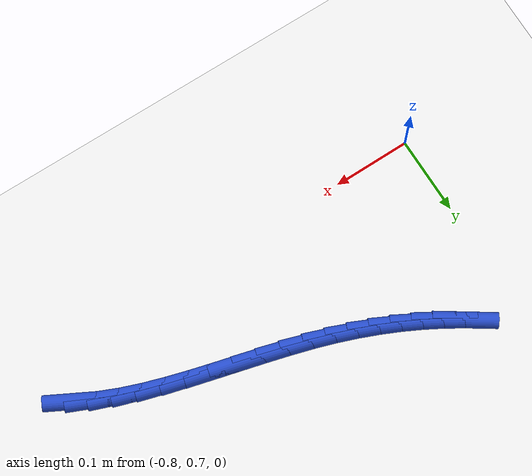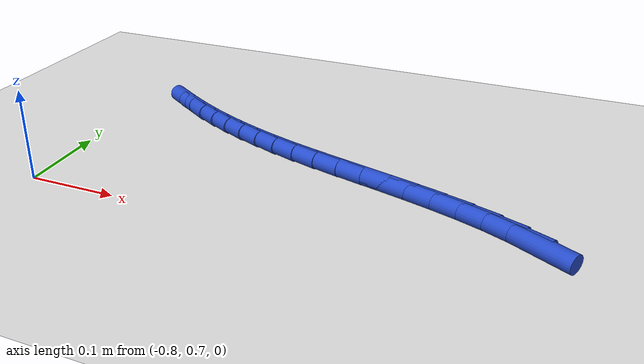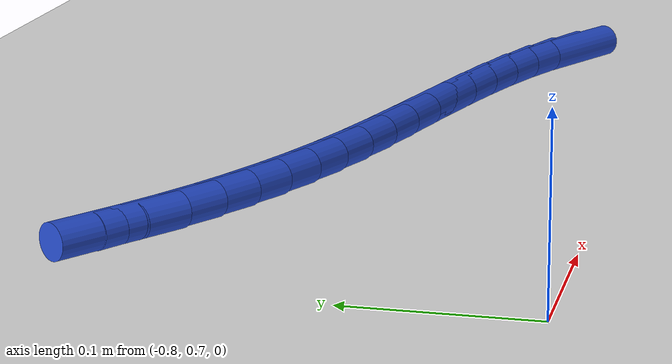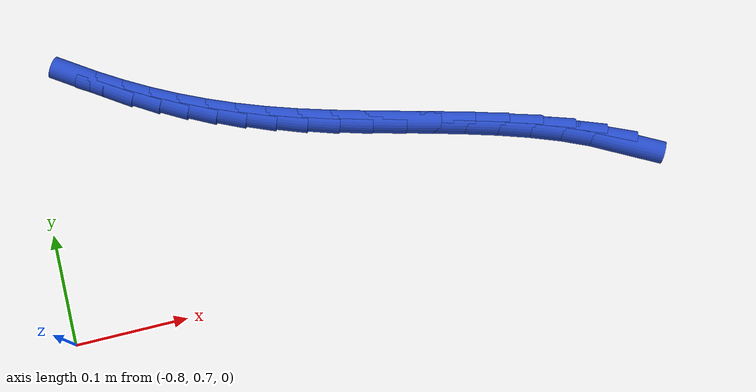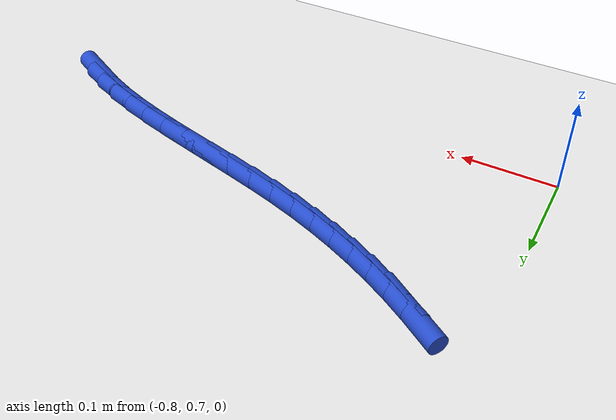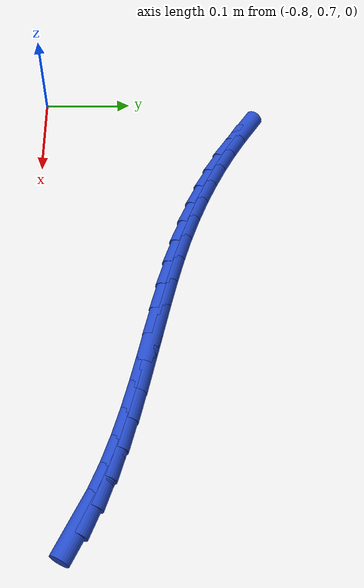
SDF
<sdf version="1.6">
 <world name="default">
  <model name="ground_plane">
   <static>1</static>
   <link name="link">
    <collision name="collision">
     <geometry><plane><normal>0 0 1</normal><size>100 100</size></plane></geometry>
     <surface><friction><ode><mu>100</mu><mu2>50</mu2></ode></friction></surface>
    </collision>
    <visual name="visual">
     <cast_shadows>0</cast_shadows>
     <geometry><plane><normal>0 0 1</normal><size>100 100</size></plane></geometry>
     <material>
      <script><uri>file://media/materials/scripts/gazebo.material</uri><name>Gazebo/WhiteGlow</name></script>
     </material>
    </visual>
   </link>
  </model>
  <model name="line">
   <link name="link_33">
    <pose>-0.28940797527144874 0.7617597551042825 0.01 0 1.57 -0.48738198558511237</pose>
    <collision name="collision">
     <geometry><cylinder><radius>0.01</radius><length>0.08</length></cylinder></geometry>
    </collision>
    <visual name="visual">
     <material>
      <script><name>Gazebo/Blue</name><uri>file://media/materials/scripts/gazebo.material</uri></script>
     </material>
     <geometry><cylinder><radius>0.01</radius><length>0.08</length></cylinder></geometry>
    </visual>
   </link>
   <link name="link_34">
    <pose>-0.3122021487472816 0.7738413504435968 0.01 0 1.57 -0.41052949769458824</pose>
    <collision name="collision">
     <geometry><cylinder><radius>0.01</radius><length>0.08</length></cylinder></geometry>
    </collision>
    <visual name="visual">
     <material>
      <script><name>Gazebo/Blue</name><uri>file://media/materials/scripts/gazebo.material</uri></script>
     </material>
     <geometry><cylinder><radius>0.01</radius><length>0.08</length></cylinder></geometry>
    </visual>
   </link>
   <link name="link_35">
    <pose>-0.33702815550499 0.7846471397844316 0.01 0 1.57 -0.35223494074170936</pose>
    <collision name="collision">
     <geometry><cylinder><radius>0.01</radius><length>0.08</length></cylinder></geometry>
    </collision>
    <visual name="visual">
     <material>
      <script><name>Gazebo/Blue</name><uri>file://media/materials/scripts/gazebo.material</uri></script>
     </material>
     <geometry><cylinder><radius>0.01</radius><length>0.08</length></cylinder></geometry>
    </visual>
   </link>
   <link name="link_36">
    <pose>-0.3635297567589397 0.7943881559080544 0.01 0 1.57 -0.3091997455386601</pose>
    <collision name="collision">
     <geometry><cylinder><radius>0.01</radius><length>0.08</length></cylinder></geometry>
    </collision>
    <visual name="visual">
     <material>
      <script><name>Gazebo/Blue</name><uri>file://media/materials/scripts/gazebo.material</uri></script>
     </material>
     <geometry><cylinder><radius>0.01</radius><length>0.08</length></cylinder></geometry>
    </visual>
   </link>
   <link name="link_37">
    <pose>-0.39135071372349745 0.8032754315957341 0.01 0 1.57 -0.2789594900883372</pose>
    <collision name="collision">
     <geometry><cylinder><radius>0.01</radius><length>0.08</length></cylinder></geometry>
    </collision>
    <visual name="visual">
     <material>
      <script><name>Gazebo/Blue</name><uri>file://media/materials/scripts/gazebo.material</uri></script>
     </material>
     <geometry><cylinder><radius>0.01</radius><length>0.08</length></cylinder></geometry>
    </visual>
   </link>
   <link name="link_38">
    <pose>-0.42013478761302847 0.8115199996287379 0.01 0 1.57 -0.25981781600576476</pose>
    <collision name="collision">
     <geometry><cylinder><radius>0.01</radius><length>0.08</length></cylinder></geometry>
    </collision>
    <visual name="visual">
     <material>
      <script><name>Gazebo/Blue</name><uri>file://media/materials/scripts/gazebo.material</uri></script>
     </material>
     <geometry><cylinder><radius>0.01</radius><length>0.08</length></cylinder></geometry>
    </visual>
   </link>
   <link name="link_39">
    <pose>-0.4495257396418997 0.8193328927883344 0.01 0 1.57 -0.25074445896426306</pose>
    <collision name="collision">
     <geometry><cylinder><radius>0.01</radius><length>0.08</length></cylinder></geometry>
    </collision>
    <visual name="visual">
     <material>
      <script><name>Gazebo/Blue</name><uri>file://media/materials/scripts/gazebo.material</uri></script>
     </material>
     <geometry><cylinder><radius>0.01</radius><length>0.08</length></cylinder></geometry>
    </visual>
   </link>
   <link name="link_40">
    <pose>-0.4791673310244763 0.8269251438557914 0.01 0 1.57 -0.25129844300568865</pose>
    <collision name="collision">
     <geometry><cylinder><radius>0.01</radius><length>0.08</length></cylinder></geometry>
    </collision>
    <visual name="visual">
     <material>
      <script><name>Gazebo/Blue</name><uri>file://media/materials/scripts/gazebo.material</uri></script>
     </material>
     <geometry><cylinder><radius>0.01</radius><length>0.08</length></cylinder></geometry>
    </visual>
   </link>
   <link name="link_41">
    <pose>-0.508703322975125 0.8345077856123773 0.01 0 1.57 -0.2615962167741072</pose>
    <collision name="collision">
     <geometry><cylinder><radius>0.01</radius><length>0.08</length></cylinder></geometry>
    </collision>
    <visual name="visual">
     <material>
      <script><name>Gazebo/Blue</name><uri>file://media/materials/scripts/gazebo.material</uri></script>
     </material>
     <geometry><cylinder><radius>0.01</radius><length>0.08</length></cylinder></geometry>
    </visual>
   </link>
   <link name="link_42">
    <pose>-0.5377774767082113 0.8422918508393598 0.01 0 1.57 -0.28233117322893336</pose>
    <collision name="collision">
     <geometry><cylinder><radius>0.01</radius><length>0.08</length></cylinder></geometry>
    </collision>
    <visual name="visual">
     <material>
      <script><name>Gazebo/Blue</name><uri>file://media/materials/scripts/gazebo.material</uri></script>
     </material>
     <geometry><cylinder><radius>0.01</radius><length>0.08</length></cylinder></geometry>
    </visual>
   </link>
   <link name="link_43">
    <pose>-0.5660335534381017 0.850488372318007 0.01 0 1.57 -0.31398040004769123</pose>
    <collision name="collision">
     <geometry><cylinder><radius>0.01</radius><length>0.08</length></cylinder></geometry>
    </collision>
    <visual name="visual">
     <material>
      <script><name>Gazebo/Blue</name><uri>file://media/materials/scripts/gazebo.material</uri></script>
     </material>
     <geometry><cylinder><radius>0.01</radius><length>0.08</length></cylinder></geometry>
    </visual>
   </link>
   <link name="link_44">
    <pose>-0.5931509401031935 0.8592939832415143 0.01 0 1.57 -0.3508246991687764</pose>
    <collision name="collision">
     <geometry><cylinder><radius>0.01</radius><length>0.08</length></cylinder></geometry>
    </collision>
    <visual name="visual">
     <material>
      <script><name>Gazebo/Blue</name><uri>file://media/materials/scripts/gazebo.material</uri></script>
     </material>
     <geometry><cylinder><radius>0.01</radius><length>0.08</length></cylinder></geometry>
    </visual>
   </link>
   <link name="link_45">
    <pose>-0.6190965180657434 0.8687891142166171 0.01 0 1.57 -0.3893815449309612</pose>
    <collision name="collision">
     <geometry><cylinder><radius>0.01</radius><length>0.08</length></cylinder></geometry>
    </collision>
    <visual name="visual">
     <material>
      <script><name>Gazebo/Blue</name><uri>file://media/materials/scripts/gazebo.material</uri></script>
     </material>
     <geometry><cylinder><radius>0.01</radius><length>0.08</length></cylinder></geometry>
    </visual>
   </link>
   <link name="link_46">
    <pose>-0.6439761425299153 0.8789980239088264 0.01 0 1.57 -0.42917657582938307</pose>
    <collision name="collision">
     <geometry><cylinder><radius>0.01</radius><length>0.08</length></cylinder></geometry>
    </collision>
    <visual name="visual">
     <material>
      <script><name>Gazebo/Blue</name><uri>file://media/materials/scripts/gazebo.material</uri></script>
     </material>
     <geometry><cylinder><radius>0.01</radius><length>0.08</length></cylinder></geometry>
    </visual>
   </link>
   <link name="link_47">
    <pose>-0.6678965727561397 0.8899446055724728 0.01 0 1.57 -0.4696688643362292</pose>
    <collision name="collision">
     <geometry><cylinder><radius>0.01</radius><length>0.08</length></cylinder></geometry>
    </collision>
    <visual name="visual">
     <material>
      <script><name>Gazebo/Blue</name><uri>file://media/materials/scripts/gazebo.material</uri></script>
     </material>
     <geometry><cylinder><radius>0.01</radius><length>0.08</length></cylinder></geometry>
    </visual>
   </link>
   <link name="link_48">
    <pose>-0.6909645680048476 0.9016527524618874 0.01 0 1.57 -0.5102531969280759</pose>
    <collision name="collision">
     <geometry><cylinder><radius>0.01</radius><length>0.08</length></cylinder></geometry>
    </collision>
    <visual name="visual">
     <material>
      <script><name>Gazebo/Blue</name><uri>file://media/materials/scripts/gazebo.material</uri></script>
     </material>
     <geometry><cylinder><radius>0.01</radius><length>0.08</length></cylinder></geometry>
    </visual>
   </link>
   <link name="link_49">
    <pose>-0.7132868875364696 0.9141463578314011 0.01 0 1.57 -0.5502932231464625</pose>
    <collision name="collision">
     <geometry><cylinder><radius>0.01</radius><length>0.08</length></cylinder></geometry>
    </collision>
    <visual name="visual">
     <material>
      <script><name>Gazebo/Blue</name><uri>file://media/materials/scripts/gazebo.material</uri></script>
     </material>
     <geometry><cylinder><radius>0.01</radius><length>0.08</length></cylinder></geometry>
    </visual>
   </link>
   <link name="link_50">
    <pose>-0.7349702906114366 0.9274493149353447 0.01 0 1.57 -0.5891594653885001</pose>
    <collision name="collision">
     <geometry><cylinder><radius>0.01</radius><length>0.08</length></cylinder></geometry>
    </collision>
    <visual name="visual">
     <material>
      <script><name>Gazebo/Blue</name><uri>file://media/materials/scripts/gazebo.material</uri></script>
     </material>
     <geometry><cylinder><radius>0.01</radius><length>0.08</length></cylinder></geometry>
    </visual>
   </link>
  </model>
 </world>
</sdf>
